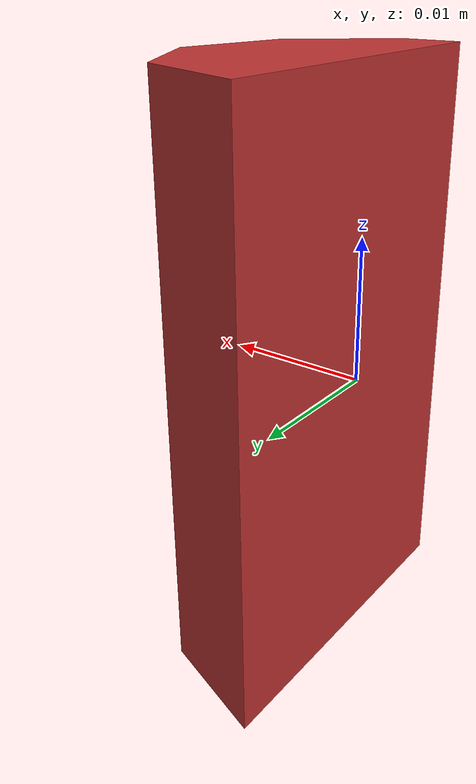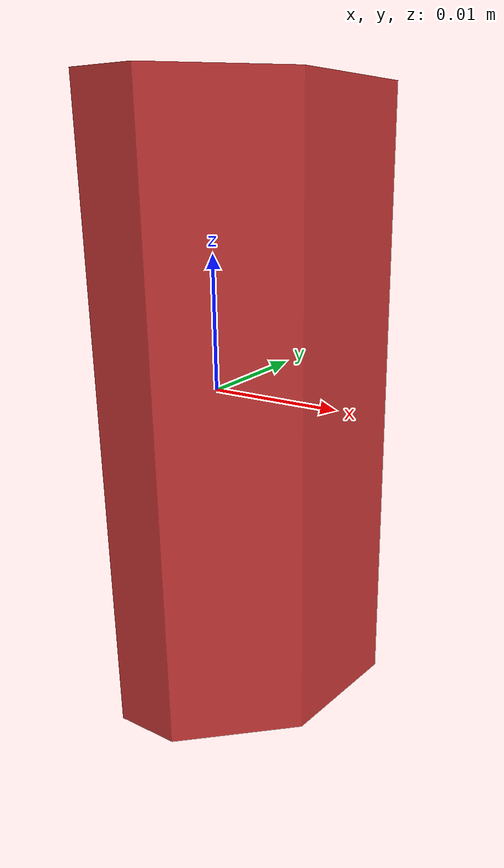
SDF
<?xml version="1.0" ?>
<sdf version='1.6'>
  <model name='cyl_3'>
    <link name='cyl_3'>
      <pose frame=''>0 0 0 0 0 0</pose>
      <inertial>
        <pose frame=''>0.005247 -0.000000 0.000000 0. 0. 0.</pose>
        <mass>1.00047698611e-05</mass>
        <inertia>
          <ixx>1.83327811213e-09</ixx>
          <ixy>-6.54215633527e-13</ixy>
          <ixz>0.0</ixz>
          <iyy>1.55787265024e-09</iyy>
          <iyz>0.0</iyz>
          <izz>4.89448544974e-10</izz>
        </inertia>
      </inertial>
      <visual>
        <pose frame=''>0 0 0 0 0 0</pose>
        <geometry>
          <mesh>
            <scale>1 1 1</scale>
            <uri>models/half_carrot_models/meshes/cyl_3.obj</uri>
          </mesh>
        </geometry>
        <material>
          <ambient>0.75 0.2 0.2 1.0</ambient>
          <diffuse>0.75 0.2 0.2 1.0</diffuse>
          <specular>0.01 0.01 0.01 1</specular>
          <emissive>0 0 0 1</emissive>
          <shader type='vertex'>
            <normal_map>__default__</normal_map>
          </shader>
        </material>
      </visual>
      <collision>
        <pose frame=''>0 0 0 0 0 0</pose>
        <geometry>
          <mesh>
            <scale>1 1 1</scale>
            <uri>models/half_carrot_models/meshes/cyl_3.obj</uri>
          </mesh>
        </geometry>
      </collision>
      <gravity>1</gravity>
      <self_collide>0</self_collide>
    </link>
  </model>
</sdf>
